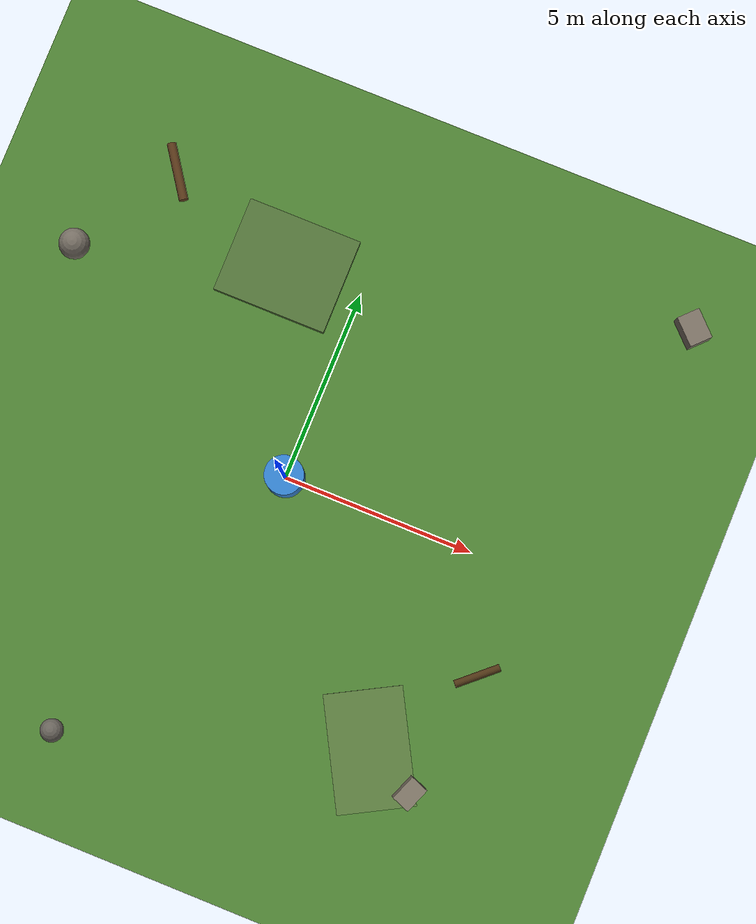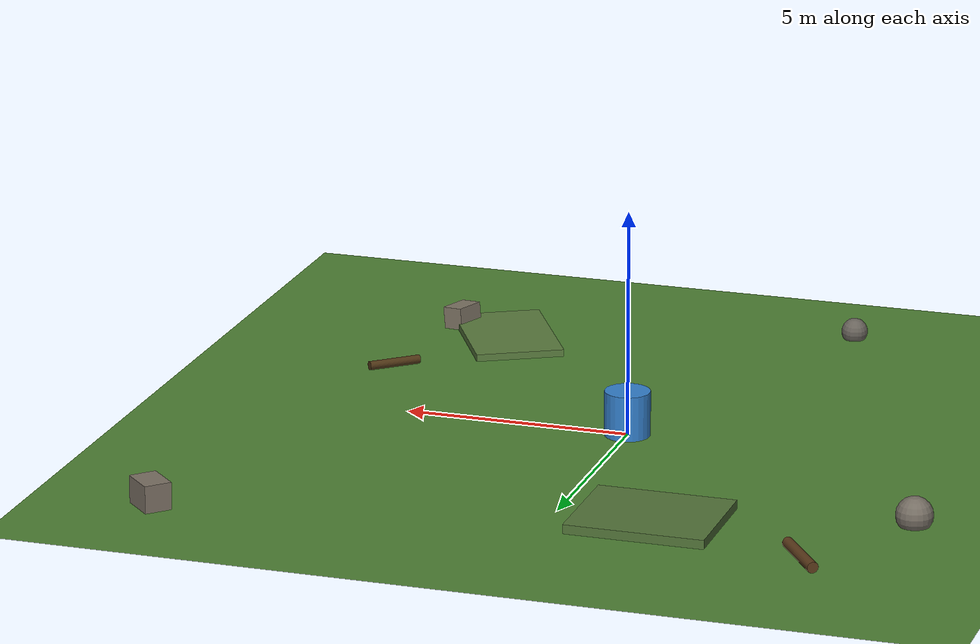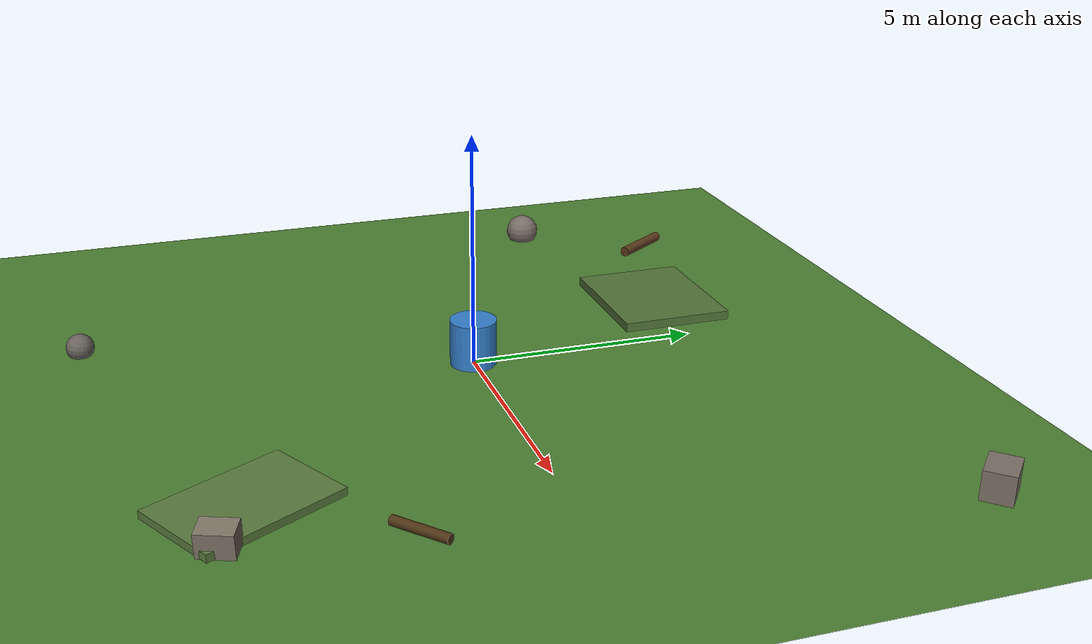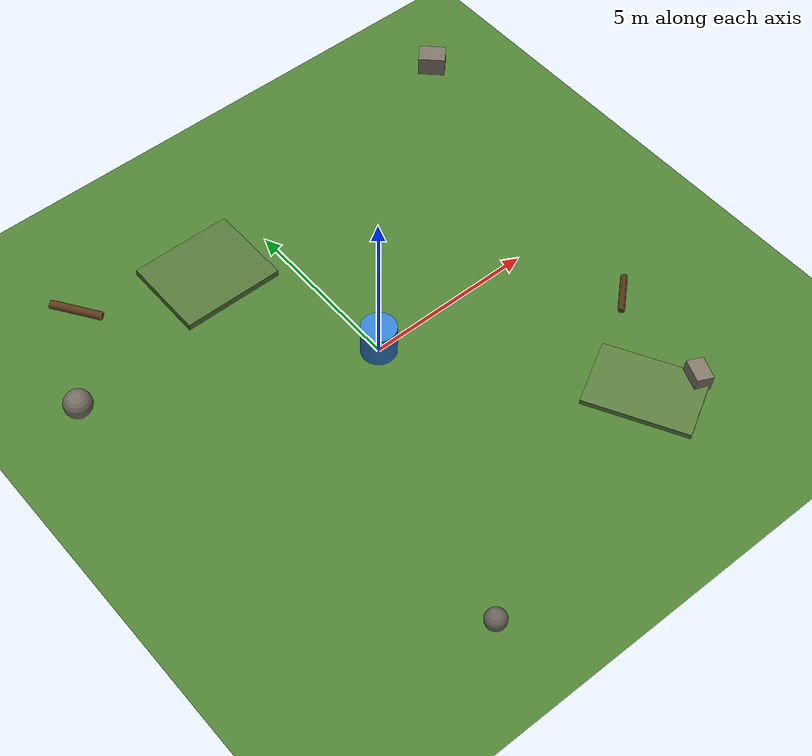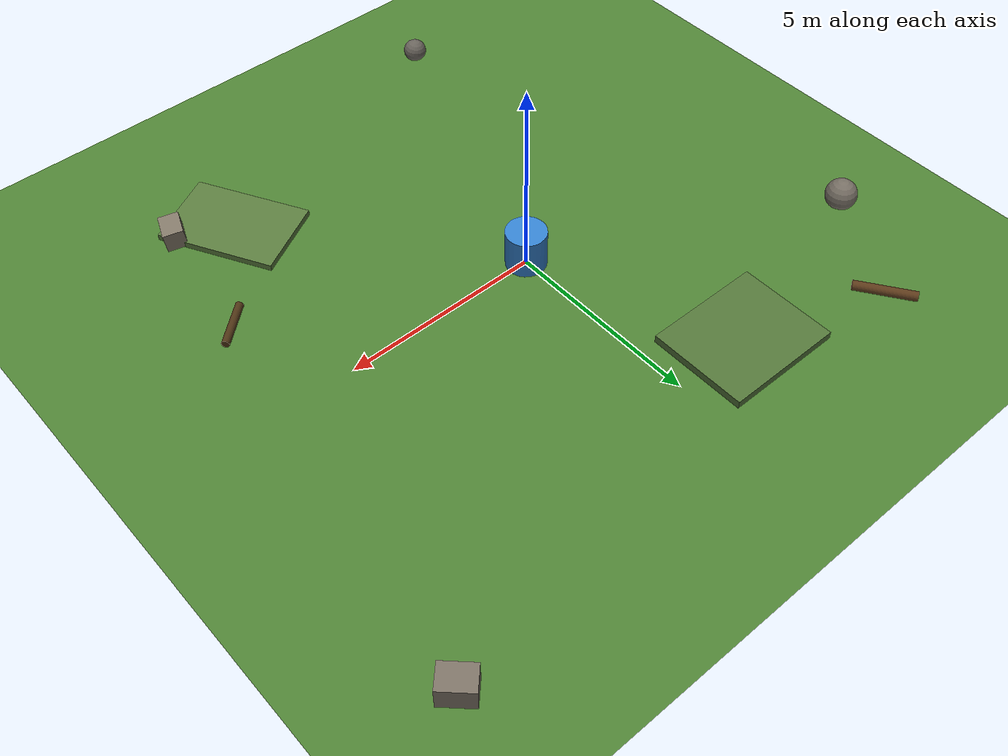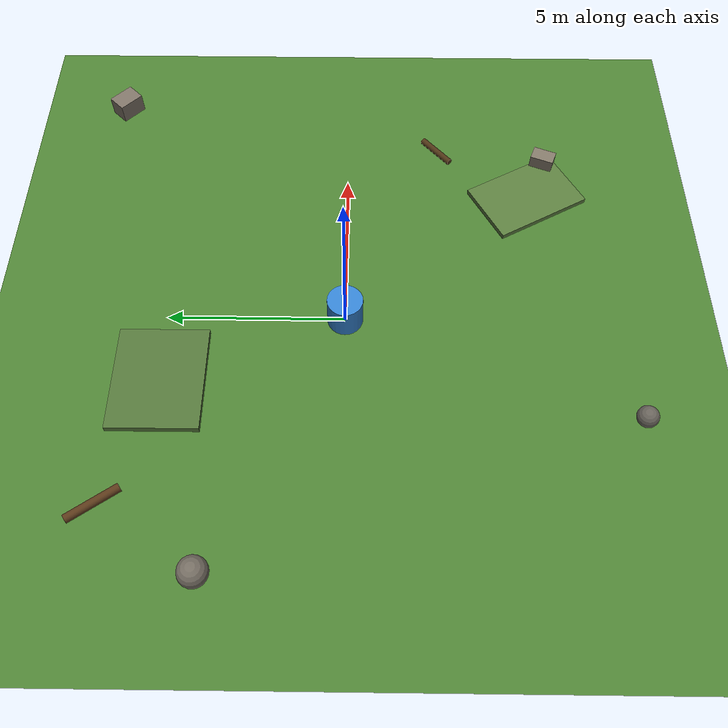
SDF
<?xml version="1.0" ?>
<sdf version="1.8">
  <world name="wildfire_world">

    <!-- Physics -->
    <physics name="1ms" type="ode">
      <max_step_size>0.001</max_step_size>
      <real_time_factor>1.0</real_time_factor>
    </physics>

    <!-- Gazebo Harmonic system plugins -->
    <plugin
      filename="gz-sim-physics-system"
      name="gz::sim::systems::Physics">
    </plugin>
    <plugin
      filename="gz-sim-user-commands-system"
      name="gz::sim::systems::UserCommands">
    </plugin>
    <plugin
      filename="gz-sim-scene-broadcaster-system"
      name="gz::sim::systems::SceneBroadcaster">
    </plugin>
    <plugin
      filename="gz-sim-sensors-system"
      name="gz::sim::systems::Sensors">
      <render_engine>ogre2</render_engine>
    </plugin>

    <!-- Sun -->
    <light type="directional" name="sun">
      <cast_shadows>true</cast_shadows>
      <pose>0 0 10 0 0 0</pose>
      <diffuse>0.8 0.8 0.8 1</diffuse>
      <specular>0.2 0.2 0.2 1</specular>
      <attenuation>
        <range>1000</range>
        <constant>0.9</constant>
        <linear>0.01</linear>
        <quadratic>0.001</quadratic>
      </attenuation>
      <direction>-0.5 0.1 -0.9</direction>
    </light>

    <!-- Ground plane (50x50 meters) -->
    <model name="ground_plane">
      <static>true</static>
      <link name="link">
        <collision name="collision">
          <geometry>
            <plane>
              <normal>0 0 1</normal>
              <size>50 50</size>
            </plane>
          </geometry>
        </collision>
        <visual name="visual">
          <geometry>
            <plane>
              <normal>0 0 1</normal>
              <size>50 50</size>
            </plane>
          </geometry>
          <material>
            <ambient>0.3 0.5 0.2 1</ambient>
            <diffuse>0.3 0.5 0.2 1</diffuse>
            <specular>0.1 0.1 0.1 1</specular>
          </material>
        </visual>
      </link>
    </model>

    <!-- Water supply marker at origin -->
    <model name="water_supply">
      <pose>0 0 0.5 0 0 0</pose>
      <static>true</static>
      <link name="link">
        <visual name="visual">
          <geometry>
            <cylinder>
              <radius>0.5</radius>
              <length>1.0</length>
            </cylinder>
          </geometry>
          <material>
            <ambient>0.2 0.5 0.8 1</ambient>
            <diffuse>0.2 0.5 0.8 1</diffuse>
            <specular>0.2 0.5 0.8 1</specular>
          </material>
        </visual>
      </link>
    </model>

    <!-- Rocks and boulders scattered across the terrain -->

    <model name="boulder_1">
      <pose>-7.2 3.5 0.2 0 0 0.4</pose>
      <static>true</static>
      <link name="link">
        <collision name="collision">
          <geometry><sphere><radius>0.4</radius></sphere></geometry>
        </collision>
        <visual name="visual">
          <geometry><sphere><radius>0.4</radius></sphere></geometry>
          <material>
            <ambient>0.45 0.42 0.38 1</ambient>
            <diffuse>0.45 0.42 0.38 1</diffuse>
          </material>
        </visual>
      </link>
    </model>

    <model name="boulder_2">
      <pose>5.8 -6.1 0.25 0.1 0 1.2</pose>
      <static>true</static>
      <link name="link">
        <collision name="collision">
          <geometry><box><size>0.7 0.5 0.5</size></box></geometry>
        </collision>
        <visual name="visual">
          <geometry><box><size>0.7 0.5 0.5</size></box></geometry>
          <material>
            <ambient>0.50 0.46 0.40 1</ambient>
            <diffuse>0.50 0.46 0.40 1</diffuse>
          </material>
        </visual>
      </link>
    </model>

    <model name="boulder_3">
      <pose>-3.0 -8.0 0.15 0 0.15 2.1</pose>
      <static>true</static>
      <link name="link">
        <collision name="collision">
          <geometry><sphere><radius>0.3</radius></sphere></geometry>
        </collision>
        <visual name="visual">
          <geometry><sphere><radius>0.3</radius></sphere></geometry>
          <material>
            <ambient>0.40 0.38 0.35 1</ambient>
            <diffuse>0.40 0.38 0.35 1</diffuse>
          </material>
        </visual>
      </link>
    </model>

    <model name="boulder_4">
      <pose>8.1 7.3 0.3 0 0 0.8</pose>
      <static>true</static>
      <link name="link">
        <collision name="collision">
          <geometry><box><size>0.6 0.8 0.6</size></box></geometry>
        </collision>
        <visual name="visual">
          <geometry><box><size>0.6 0.8 0.6</size></box></geometry>
          <material>
            <ambient>0.48 0.44 0.39 1</ambient>
            <diffuse>0.48 0.44 0.39 1</diffuse>
          </material>
        </visual>
      </link>
    </model>

    <!-- Tree stumps / logs -->

    <model name="log_1">
      <pose>-5.5 6.2 0.1 1.57 0 0.6</pose>
      <static>true</static>
      <link name="link">
        <visual name="visual">
          <geometry>
            <cylinder>
              <radius>0.12</radius>
              <length>1.5</length>
            </cylinder>
          </geometry>
          <material>
            <ambient>0.35 0.22 0.10 1</ambient>
            <diffuse>0.35 0.22 0.10 1</diffuse>
          </material>
        </visual>
      </link>
    </model>

    <model name="log_2">
      <pose>6.3 -2.8 0.1 1.57 0 2.3</pose>
      <static>true</static>
      <link name="link">
        <visual name="visual">
          <geometry>
            <cylinder>
              <radius>0.10</radius>
              <length>1.2</length>
            </cylinder>
          </geometry>
          <material>
            <ambient>0.30 0.20 0.08 1</ambient>
            <diffuse>0.30 0.20 0.08 1</diffuse>
          </material>
        </visual>
      </link>
    </model>

    <!-- Small raised terrain mound (box approximation) -->

    <model name="mound_1">
      <pose>-2.0 5.0 0.1 0 0 0</pose>
      <static>true</static>
      <link name="link">
        <collision name="collision">
          <geometry><box><size>3.0 2.5 0.2</size></box></geometry>
        </collision>
        <visual name="visual">
          <geometry><box><size>3.0 2.5 0.2</size></box></geometry>
          <material>
            <ambient>0.32 0.45 0.22 1</ambient>
            <diffuse>0.32 0.45 0.22 1</diffuse>
          </material>
        </visual>
      </link>
    </model>

    <model name="mound_2">
      <pose>4.5 -5.5 0.08 0 0 0.5</pose>
      <static>true</static>
      <link name="link">
        <collision name="collision">
          <geometry><box><size>2.0 3.0 0.16</size></box></geometry>
        </collision>
        <visual name="visual">
          <geometry><box><size>2.0 3.0 0.16</size></box></geometry>
          <material>
            <ambient>0.35 0.48 0.24 1</ambient>
            <diffuse>0.35 0.48 0.24 1</diffuse>
          </material>
        </visual>
      </link>
    </model>

    <!-- Fire logic handled by fire_grid_node (ROS 2 node), not a Gazebo plugin -->

  </world>
</sdf>
